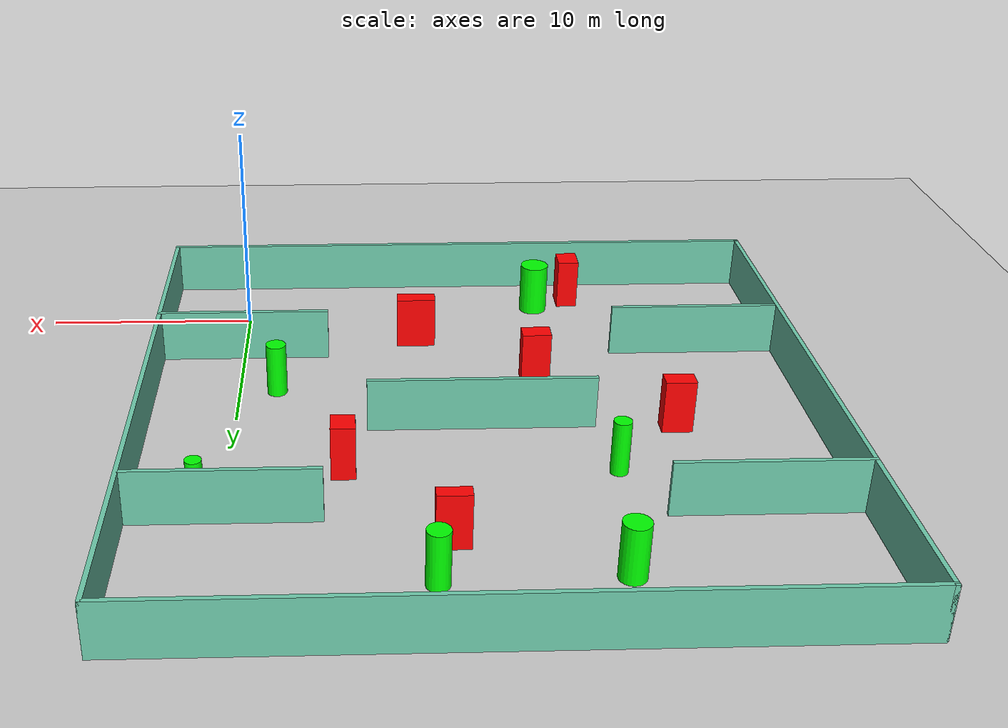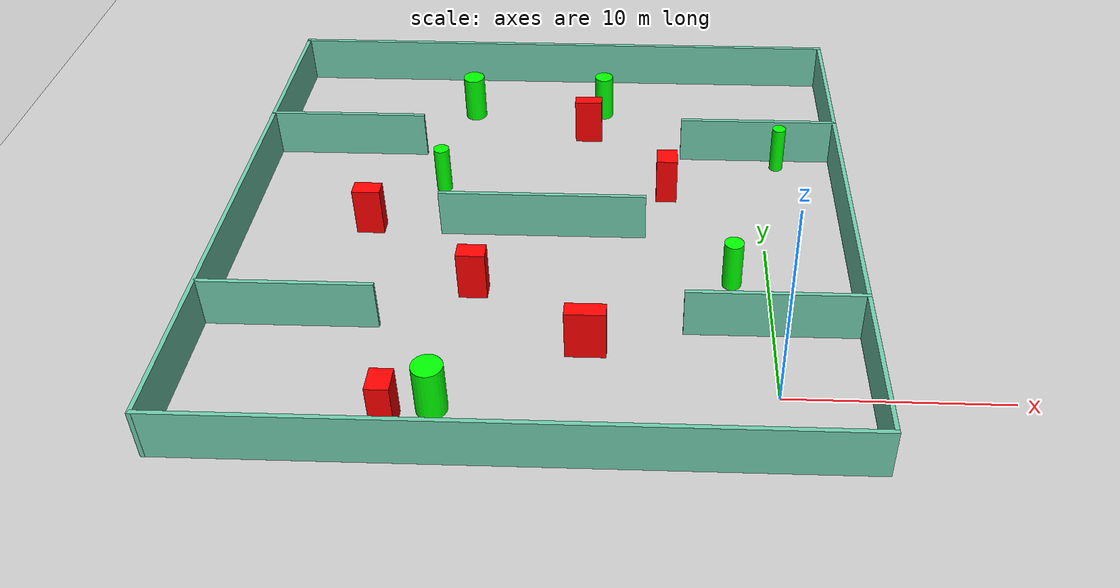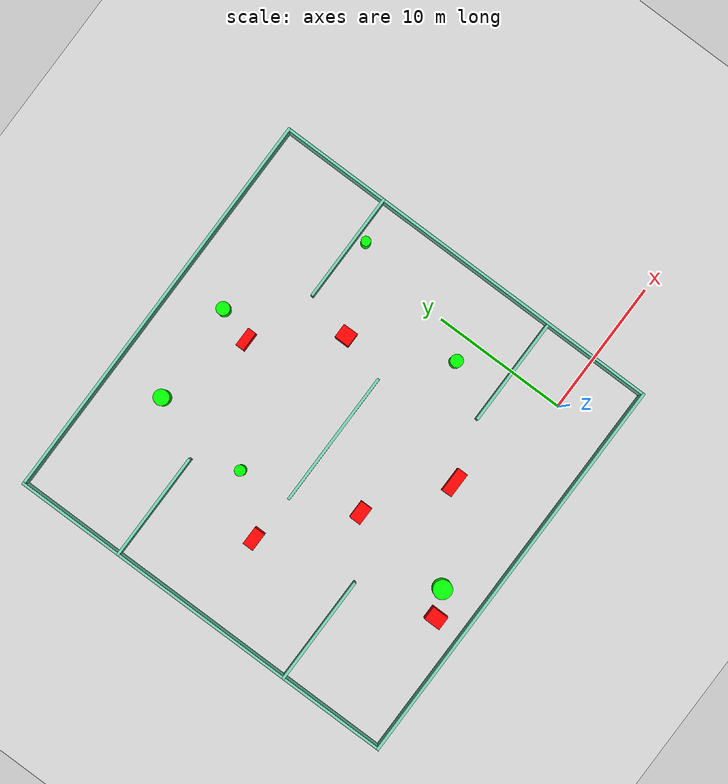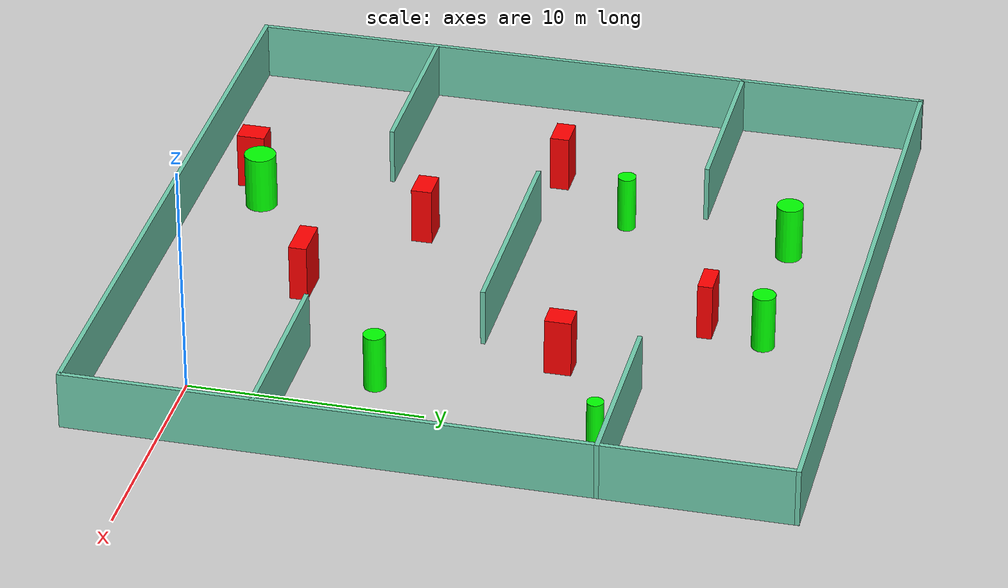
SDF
<sdf version="1.7">
 <world name="default">
  <light name="sun" type="directional">
   <pose>0 0 10 0 -0 0</pose>
   <diffuse>0.8 0.8 0.8 1</diffuse>
   <specular>0.2 0.2 0.2 1</specular>
   <attenuation>
    <range>1000</range>
    <constant>0.9</constant>
    <linear>0.01</linear>
    <quadratic>0.001</quadratic>
   </attenuation>
   <direction>-0.5 0.1 -0.9</direction>
   <spot><inner_angle>0</inner_angle><outer_angle>0</outer_angle><falloff>0</falloff></spot>
  </light>
  <model name="ground_plane">
   <static>1</static>
   <link name="link">
    <collision name="collision">
     <geometry><plane><normal>0 0 1</normal><size>100 100</size></plane></geometry>
     <surface>
      <contact><collide_bitmask>65535</collide_bitmask></contact>
      <friction><ode><mu>100</mu><mu2>50</mu2></ode></friction>
     </surface>
    </collision>
    <visual name="visual">
     <cast_shadows>0</cast_shadows>
     <geometry><plane><normal>0 0 1</normal><size>100 100</size></plane></geometry>
     <material>
      <script><uri>file://media/materials/scripts/gazebo.material</uri><name>Gazebo/Grey</name></script>
     </material>
    </visual>
   </link>
  </model>
  <gravity>0 0 -9.8</gravity>
  <magnetic_field>6e-06 2.3e-05 -4.2e-05</magnetic_field>
  <atmosphere type="adiabatic"/>
  <physics type="ode">
   <max_step_size>0.001</max_step_size>
   <real_time_factor>1</real_time_factor>
   <real_time_update_rate>1000</real_time_update_rate>
  </physics>
  <scene><ambient>0.4 0.4 0.4 1</ambient><background>0.7 0.7 0.7 1</background><shadows>1</shadows></scene>
  <spherical_coordinates>
   <surface_model>EARTH_WGS84</surface_model>
   <latitude_deg>0</latitude_deg>
   <longitude_deg>0</longitude_deg>
   <elevation>0</elevation>
   <heading_deg>0</heading_deg>
  </spherical_coordinates>
  <model name="my_base_walls">
   <link name="Wall_10">
    <collision name="Wall_10_Collision">
     <geometry><box><size>8.2 0.2 2.5</size></box></geometry>
     <pose>0 0 1.25 0 -0 0</pose>
    </collision>
    <visual name="Wall_10_Visual">
     <pose>0 0 1.25 0 -0 0</pose>
     <geometry><box><size>8.2 0.2 2.5</size></box></geometry>
     <material>
      <script><uri>file://media/materials/scripts/gazebo.material</uri><name>Gazebo/Grey</name></script>
      <ambient>0.435294 0.796078 0.67451 1</ambient>
     </material>
     <meta><layer>0</layer></meta>
    </visual>
    <pose>-11 -7 0 0 -0 0</pose>
   </link>
   <link name="Wall_12">
    <collision name="Wall_12_Collision">
     <geometry><box><size>8.2 0.2 2.5</size></box></geometry>
     <pose>0 0 1.25 0 -0 0</pose>
    </collision>
    <visual name="Wall_12_Visual">
     <pose>0 0 1.25 0 -0 0</pose>
     <geometry><box><size>8.2 0.2 2.5</size></box></geometry>
     <material>
      <script><uri>file://media/materials/scripts/gazebo.material</uri><name>Gazebo/Grey</name></script>
      <ambient>0.435294 0.796078 0.67451 1</ambient>
     </material>
     <meta><layer>0</layer></meta>
    </visual>
    <pose>-11 7 0 0 -0 0</pose>
   </link>
   <link name="Wall_14">
    <collision name="Wall_14_Collision">
     <geometry><box><size>8.2 0.2 2.5</size></box></geometry>
     <pose>0 0 1.25 0 -0 0</pose>
    </collision>
    <visual name="Wall_14_Visual">
     <pose>0 0 1.25 0 -0 0</pose>
     <geometry><box><size>8.2 0.2 2.5</size></box></geometry>
     <material>
      <script><uri>file://media/materials/scripts/gazebo.material</uri><name>Gazebo/Grey</name></script>
      <ambient>0.435294 0.796078 0.67451 1</ambient>
     </material>
     <meta><layer>0</layer></meta>
    </visual>
    <pose>11 7 0 0 -0 3.14159</pose>
   </link>
   <link name="Wall_16">
    <collision name="Wall_16_Collision">
     <geometry><box><size>10.2 0.2 2.5</size></box></geometry>
     <pose>0 0 1.25 0 -0 0</pose>
    </collision>
    <visual name="Wall_16_Visual">
     <pose>0 0 1.25 0 -0 0</pose>
     <geometry><box><size>10.2 0.2 2.5</size></box></geometry>
     <material>
      <script><uri>file://media/materials/scripts/gazebo.material</uri><name>Gazebo/Grey</name></script>
      <ambient>0.435294 0.796078 0.67451 1</ambient>
     </material>
     <meta><layer>0</layer></meta>
    </visual>
    <pose>0 0 0 0 -0 3.14159</pose>
   </link>
   <link name="Wall_2">
    <collision name="Wall_2_Collision">
     <geometry><box><size>30.2 0.2 2.5</size></box></geometry>
     <pose>0 0 1.25 0 -0 0</pose>
    </collision>
    <visual name="Wall_2_Visual">
     <pose>0 0 1.25 0 -0 0</pose>
     <geometry><box><size>30.2 0.2 2.5</size></box></geometry>
     <material>
      <script><uri>file://media/materials/scripts/gazebo.material</uri><name>Gazebo/Grey</name></script>
      <ambient>0.435294 0.796078 0.67451 1</ambient>
     </material>
     <meta><layer>0</layer></meta>
    </visual>
    <pose>0 -15 0 0 -0 3.14159</pose>
   </link>
   <link name="Wall_3">
    <collision name="Wall_3_Collision">
     <geometry><box><size>30.2 0.2 2.5</size></box></geometry>
     <pose>0 0 1.25 0 -0 0</pose>
    </collision>
    <visual name="Wall_3_Visual">
     <pose>0 0 1.25 0 -0 0</pose>
     <geometry><box><size>30.2 0.2 2.5</size></box></geometry>
     <material>
      <script><uri>file://media/materials/scripts/gazebo.material</uri><name>Gazebo/Grey</name></script>
      <ambient>0.435294 0.796078 0.67451 1</ambient>
     </material>
     <meta><layer>0</layer></meta>
    </visual>
    <pose>-15 0 0 0 -0 1.5708</pose>
   </link>
   <link name="Wall_4">
    <collision name="Wall_4_Collision">
     <geometry><box><size>30.2 0.2 2.5</size></box></geometry>
     <pose>0 0 1.25 0 -0 0</pose>
    </collision>
    <visual name="Wall_4_Visual">
     <pose>0 0 1.25 0 -0 0</pose>
     <geometry><box><size>30.2 0.2 2.5</size></box></geometry>
     <material>
      <script><uri>file://media/materials/scripts/gazebo.material</uri><name>Gazebo/Grey</name></script>
      <ambient>0.435294 0.796078 0.67451 1</ambient>
     </material>
     <meta><layer>0</layer></meta>
    </visual>
    <pose>0 15 0 0 -0 0</pose>
   </link>
   <link name="Wall_6">
    <collision name="Wall_6_Collision">
     <geometry><box><size>30.2 0.2 2.5</size></box></geometry>
     <pose>0 0 1.25 0 -0 0</pose>
    </collision>
    <visual name="Wall_6_Visual">
     <pose>0 0 1.25 0 -0 0</pose>
     <geometry><box><size>30.2 0.2 2.5</size></box></geometry>
     <material>
      <script><uri>file://media/materials/scripts/gazebo.material</uri><name>Gazebo/Grey</name></script>
      <ambient>0.435294 0.796078 0.67451 1</ambient>
     </material>
     <meta><layer>0</layer></meta>
    </visual>
    <pose>15 0 0 0 -0 1.5708</pose>
   </link>
   <link name="Wall_8">
    <collision name="Wall_8_Collision">
     <geometry><box><size>8.2 0.2 2.5</size></box></geometry>
     <pose>0 0 1.25 0 -0 0</pose>
    </collision>
    <visual name="Wall_8_Visual">
     <pose>0 0 1.25 0 -0 0</pose>
     <geometry><box><size>8.2 0.2 2.5</size></box></geometry>
     <material>
      <script><uri>file://media/materials/scripts/gazebo.material</uri><name>Gazebo/Grey</name></script>
      <ambient>0.435294 0.796078 0.67451 1</ambient>
     </material>
     <meta><layer>0</layer></meta>
    </visual>
    <pose>11 -7 0 0 -0 3.14159</pose>
   </link>
   <static>1</static>
   <pose>-11 11 0 0 -0 0</pose>
  </model>
  <model name="cylinder1">
   <static>1</static>
   <link name="link">
    <inertial>
     <mass>1</mass>
     <inertia><ixx>0.5</ixx><ixy>0</ixy><ixz>0</ixz><iyy>0.5</iyy><iyz>0</iyz><izz>1</izz></inertia>
    </inertial>
    <collision name="collision">
     <geometry><cylinder><radius>0.6891921003498059</radius><length>2.5</length></cylinder></geometry>
    </collision>
    <visual name="visual">
     <geometry><cylinder><radius>0.6891921003498059</radius><length>2.5</length></cylinder></geometry>
     <material>
      <ambient>0 1 0 1</ambient>
      <diffuse>0 1 0 1</diffuse>
      <specular>0.1 0.1 0.1 1</specular>
      <emissive>0 0 0 0</emissive>
     </material>
    </visual>
   </link>
   <pose>-14.730904629998388 -1.0473595342409858 1.25 0 0 0</pose>
  </model>
  <model name="cylinder2">
   <static>1</static>
   <link name="link">
    <inertial>
     <mass>1</mass>
     <inertia><ixx>0.5</ixx><ixy>0</ixy><ixz>0</ixz><iyy>0.5</iyy><iyz>0</iyz><izz>1</izz></inertia>
    </inertial>
    <collision name="collision">
     <geometry><cylinder><radius>0.5747209816950971</radius><length>2.5</length></cylinder></geometry>
    </collision>
    <visual name="visual">
     <geometry><cylinder><radius>0.5747209816950971</radius><length>2.5</length></cylinder></geometry>
     <material>
      <ambient>0 1 0 1</ambient>
      <diffuse>0 1 0 1</diffuse>
      <specular>0.1 0.1 0.1 1</specular>
      <emissive>0 0 0 0</emissive>
     </material>
    </visual>
   </link>
   <pose>-15.727777343547217 22.03343695237891 1.25 0 0 0</pose>
  </model>
  <model name="cylinder3">
   <static>1</static>
   <link name="link">
    <inertial>
     <mass>1</mass>
     <inertia><ixx>0.5</ixx><ixy>0</ixy><ixz>0</ixz><iyy>0.5</iyy><iyz>0</iyz><izz>1</izz></inertia>
    </inertial>
    <collision name="collision">
     <geometry><cylinder><radius>0.3959654908980159</radius><length>2.5</length></cylinder></geometry>
    </collision>
    <visual name="visual">
     <geometry><cylinder><radius>0.3959654908980159</radius><length>2.5</length></cylinder></geometry>
     <material>
      <ambient>0 1 0 1</ambient>
      <diffuse>0 1 0 1</diffuse>
      <specular>0.1 0.1 0.1 1</specular>
      <emissive>0 0 0 0</emissive>
     </material>
    </visual>
   </link>
   <pose>-16.503468274453063 14.792705862819577 1.25 0 0 0</pose>
  </model>
  <model name="cylinder4">
   <static>1</static>
   <link name="link">
    <inertial>
     <mass>1</mass>
     <inertia><ixx>0.5</ixx><ixy>0</ixy><ixz>0</ixz><iyy>0.5</iyy><iyz>0</iyz><izz>1</izz></inertia>
    </inertial>
    <collision name="collision">
     <geometry><cylinder><radius>0.350915614642143</radius><length>2.5</length></cylinder></geometry>
    </collision>
    <visual name="visual">
     <geometry><cylinder><radius>0.350915614642143</radius><length>2.5</length></cylinder></geometry>
     <material>
      <ambient>0 1 0 1</ambient>
      <diffuse>0 1 0 1</diffuse>
      <specular>0.1 0.1 0.1 1</specular>
      <emissive>0 0 0 0</emissive>
     </material>
    </visual>
   </link>
   <pose>1.051396379138211 17.27761819763854 1.25 0 0 0</pose>
  </model>
  <model name="cylinder5">
   <static>1</static>
   <link name="link">
    <inertial>
     <mass>1</mass>
     <inertia><ixx>0.5</ixx><ixy>0</ixy><ixz>0</ixz><iyy>0.5</iyy><iyz>0</iyz><izz>1</izz></inertia>
    </inertial>
    <collision name="collision">
     <geometry><cylinder><radius>0.4886902495043089</radius><length>2.5</length></cylinder></geometry>
    </collision>
    <visual name="visual">
     <geometry><cylinder><radius>0.4886902495043089</radius><length>2.5</length></cylinder></geometry>
     <material>
      <ambient>0 1 0 1</ambient>
      <diffuse>0 1 0 1</diffuse>
      <specular>0.1 0.1 0.1 1</specular>
      <emissive>0 0 0 0</emissive>
     </material>
    </visual>
   </link>
   <pose>-8.402557898821746 22.29744661844994 1.25 0 0 0</pose>
  </model>
  <model name="cylinder6">
   <static>1</static>
   <link name="link">
    <inertial>
     <mass>1</mass>
     <inertia><ixx>0.5</ixx><ixy>0</ixy><ixz>0</ixz><iyy>0.5</iyy><iyz>0</iyz><izz>1</izz></inertia>
    </inertial>
    <collision name="collision">
     <geometry><cylinder><radius>0.4639578385464079</radius><length>2.5</length></cylinder></geometry>
    </collision>
    <visual name="visual">
     <geometry><cylinder><radius>0.4639578385464079</radius><length>2.5</length></cylinder></geometry>
     <material>
      <ambient>0 1 0 1</ambient>
      <diffuse>0 1 0 1</diffuse>
      <specular>0.1 0.1 0.1 1</specular>
      <emissive>0 0 0 0</emissive>
     </material>
    </visual>
   </link>
   <pose>-1.752203260628864 7.488704210631763 1.25 0 0 0</pose>
  </model>
  <model name="box1">
   <static>1</static>
   <link name="link">
    <inertial>
     <mass>1</mass>
     <inertia><ixx>0.083</ixx><ixy>0</ixy><ixz>0</ixz><iyy>0.083</iyy><iyz>0</iyz><izz>0.083</izz></inertia>
    </inertial>
    <collision name="collision">
     <geometry><box><size>1.8574791680844176 0.7727893279956682 2.5</size></box></geometry>
    </collision>
    <visual name="visual">
     <geometry><box><size>1.8574791680844176 0.7727893279956682 2.5</size></box></geometry>
     <material>
      <ambient>1 0 0 1</ambient>
      <diffuse>1 0 0 1</diffuse>
      <specular>0.1 0.1 0.1 1</specular>
      <emissive>0 0 0 0</emissive>
     </material>
    </visual>
    <sensor name="my_contact" type="contact">
     <contact><collision>box_collision</collision><topic>__default_topic__</topic></contact>
    </sensor>
   </link>
   <pose>-8.425779512406613 2.6426679225941943 1.25 0 0 0</pose>
  </model>
  <model name="box2">
   <static>1</static>
   <link name="link">
    <inertial>
     <mass>1</mass>
     <inertia><ixx>0.083</ixx><ixy>0</ixy><ixz>0</ixz><iyy>0.083</iyy><iyz>0</iyz><izz>0.083</izz></inertia>
    </inertial>
    <collision name="collision">
     <geometry><box><size>1.3722968629604706 0.8273402227223795 2.5</size></box></geometry>
    </collision>
    <visual name="visual">
     <geometry><box><size>1.3722968629604706 0.8273402227223795 2.5</size></box></geometry>
     <material>
      <ambient>1 0 0 1</ambient>
      <diffuse>1 0 0 1</diffuse>
      <specular>0.1 0.1 0.1 1</specular>
      <emissive>0 0 0 0</emissive>
     </material>
    </visual>
    <sensor name="my_contact" type="contact">
     <contact><collision>box_collision</collision><topic>__default_topic__</topic></contact>
    </sensor>
   </link>
   <pose>-19.652769128832333 11.264421306843149 1.25 0 0 0</pose>
  </model>
  <model name="box3">
   <static>1</static>
   <link name="link">
    <inertial>
     <mass>1</mass>
     <inertia><ixx>0.083</ixx><ixy>0</ixy><ixz>0</ixz><iyy>0.083</iyy><iyz>0</iyz><izz>0.083</izz></inertia>
    </inertial>
    <collision name="collision">
     <geometry><box><size>1.029087955337513 1.2334913818521498 2.5</size></box></geometry>
    </collision>
    <visual name="visual">
     <geometry><box><size>1.029087955337513 1.2334913818521498 2.5</size></box></geometry>
     <material>
      <ambient>1 0 0 1</ambient>
      <diffuse>1 0 0 1</diffuse>
      <specular>0.1 0.1 0.1 1</specular>
      <emissive>0 0 0 0</emissive>
     </material>
    </visual>
    <sensor name="my_contact" type="contact">
     <contact><collision>box_collision</collision><topic>__default_topic__</topic></contact>
    </sensor>
   </link>
   <pose>-16.54476508788377 -1.866035258111924 1.25 0 0 0</pose>
  </model>
  <model name="box4">
   <static>1</static>
   <link name="link">
    <inertial>
     <mass>1</mass>
     <inertia><ixx>0.083</ixx><ixy>0</ixy><ixz>0</ixz><iyy>0.083</iyy><iyz>0</iyz><izz>0.083</izz></inertia>
    </inertial>
    <collision name="collision">
     <geometry><box><size>1.4384335960677794 0.6425070310555206 2.5</size></box></geometry>
    </collision>
    <visual name="visual">
     <geometry><box><size>1.4384335960677794 0.6425070310555206 2.5</size></box></geometry>
     <material>
      <ambient>1 0 0 1</ambient>
      <diffuse>1 0 0 1</diffuse>
      <specular>0.1 0.1 0.1 1</specular>
      <emissive>0 0 0 0</emissive>
     </material>
    </visual>
    <sensor name="my_contact" type="contact">
     <contact><collision>box_collision</collision><topic>__default_topic__</topic></contact>
    </sensor>
   </link>
   <pose>-9.140182696495117 19.81163524853532 1.25 0 0 0</pose>
  </model>
  <model name="box5">
   <static>1</static>
   <link name="link">
    <inertial>
     <mass>1</mass>
     <inertia><ixx>0.083</ixx><ixy>0</ixy><ixz>0</ixz><iyy>0.083</iyy><iyz>0</iyz><izz>0.083</izz></inertia>
    </inertial>
    <collision name="collision">
     <geometry><box><size>1.3528592875688537 0.8861334428011391 2.5</size></box></geometry>
    </collision>
    <visual name="visual">
     <geometry><box><size>1.3528592875688537 0.8861334428011391 2.5</size></box></geometry>
     <material>
      <ambient>1 0 0 1</ambient>
      <diffuse>1 0 0 1</diffuse>
      <specular>0.1 0.1 0.1 1</specular>
      <emissive>0 0 0 0</emissive>
     </material>
    </visual>
    <sensor name="my_contact" type="contact">
     <contact><collision>box_collision</collision><topic>__default_topic__</topic></contact>
    </sensor>
   </link>
   <pose>-13.899139655035023 6.521784597164135 1.25 0 0 0</pose>
  </model>
  <model name="box6">
   <static>1</static>
   <link name="link">
    <inertial>
     <mass>1</mass>
     <inertia><ixx>0.083</ixx><ixy>0</ixy><ixz>0</ixz><iyy>0.083</iyy><iyz>0</iyz><izz>0.083</izz></inertia>
    </inertial>
    <collision name="collision">
     <geometry><box><size>1.0570093275937467 1.1332155088694802 2.5</size></box></geometry>
    </collision>
    <visual name="visual">
     <geometry><box><size>1.0570093275937467 1.1332155088694802 2.5</size></box></geometry>
     <material>
      <ambient>1 0 0 1</ambient>
      <diffuse>1 0 0 1</diffuse>
      <specular>0.1 0.1 0.1 1</specular>
      <emissive>0 0 0 0</emissive>
     </material>
    </visual>
    <sensor name="my_contact" type="contact">
     <contact><collision>box_collision</collision><topic>__default_topic__</topic></contact>
    </sensor>
   </link>
   <pose>-4.85815255961235 14.520709658961305 1.25 0 0 0</pose>
  </model>
 </world>
</sdf>
